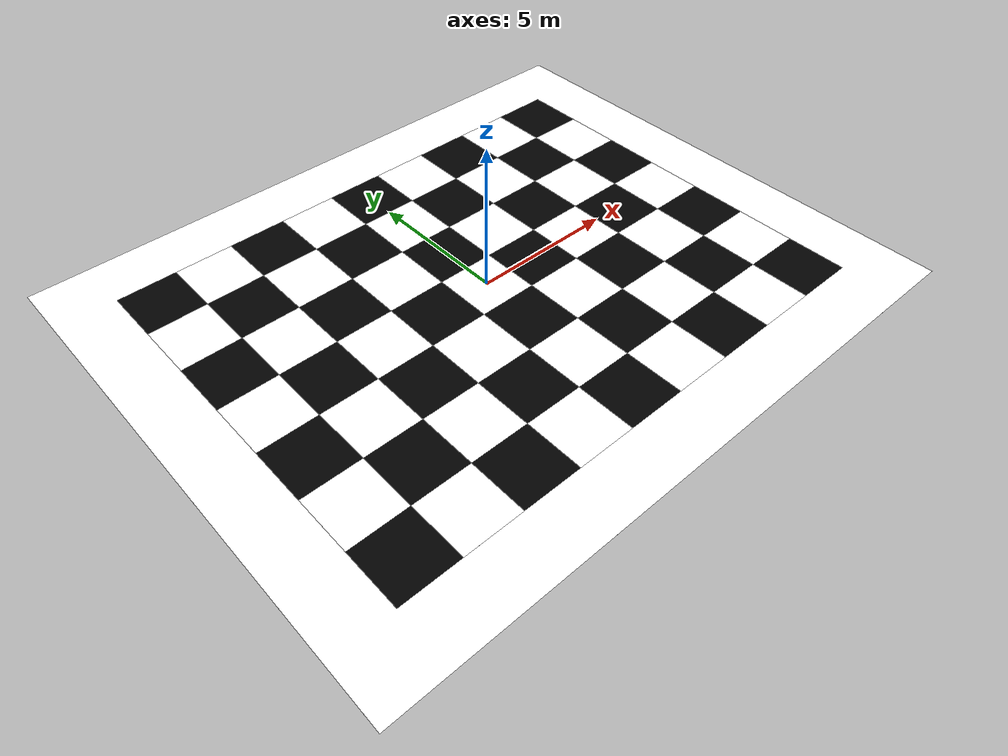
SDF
<?xml version="1.0"?>
<sdf version="1.4">
  <model name="checkerboard_9_7_2_0">
  <static>true</static>
  <link name="checkerboard_9_7_2_0_body">
      <visual name="checker_0_0">
        <pose>-8.0 -6.0 0 0 0 0</pose>
        <geometry>
          <box>
            <size>2.0 2.0 0.0002</size>
          </box>
        </geometry>
        <material>
          <ambient>0 0 0 1</ambient>
          <diffuse>0 0 0 1</diffuse>
          <specular>0 0 0 1</specular>
          <emissive>0 0 0 1</emissive>
        </material>
      </visual>
      <visual name="checker_0_1">
        <pose>-8.0 -4.0 0 0 0 0</pose>
        <geometry>
          <box>
            <size>2.0 2.0 0.0002</size>
          </box>
        </geometry>
        <material>
          <ambient>1 1 1 1</ambient>
          <diffuse>1 1 1 1</diffuse>
          <specular>1 1 1 1</specular>
          <emissive>1 1 1 1</emissive>
        </material>
      </visual>
      <visual name="checker_0_2">
        <pose>-8.0 -2.0 0 0 0 0</pose>
        <geometry>
          <box>
            <size>2.0 2.0 0.0002</size>
          </box>
        </geometry>
        <material>
          <ambient>0 0 0 1</ambient>
          <diffuse>0 0 0 1</diffuse>
          <specular>0 0 0 1</specular>
          <emissive>0 0 0 1</emissive>
        </material>
      </visual>
      <visual name="checker_0_3">
        <pose>-8.0 0.0 0 0 0 0</pose>
        <geometry>
          <box>
            <size>2.0 2.0 0.0002</size>
          </box>
        </geometry>
        <material>
          <ambient>1 1 1 1</ambient>
          <diffuse>1 1 1 1</diffuse>
          <specular>1 1 1 1</specular>
          <emissive>1 1 1 1</emissive>
        </material>
      </visual>
      <visual name="checker_0_4">
        <pose>-8.0 2.0 0 0 0 0</pose>
        <geometry>
          <box>
            <size>2.0 2.0 0.0002</size>
          </box>
        </geometry>
        <material>
          <ambient>0 0 0 1</ambient>
          <diffuse>0 0 0 1</diffuse>
          <specular>0 0 0 1</specular>
          <emissive>0 0 0 1</emissive>
        </material>
      </visual>
      <visual name="checker_0_5">
        <pose>-8.0 4.0 0 0 0 0</pose>
        <geometry>
          <box>
            <size>2.0 2.0 0.0002</size>
          </box>
        </geometry>
        <material>
          <ambient>1 1 1 1</ambient>
          <diffuse>1 1 1 1</diffuse>
          <specular>1 1 1 1</specular>
          <emissive>1 1 1 1</emissive>
        </material>
      </visual>
      <visual name="checker_0_6">
        <pose>-8.0 6.0 0 0 0 0</pose>
        <geometry>
          <box>
            <size>2.0 2.0 0.0002</size>
          </box>
        </geometry>
        <material>
          <ambient>0 0 0 1</ambient>
          <diffuse>0 0 0 1</diffuse>
          <specular>0 0 0 1</specular>
          <emissive>0 0 0 1</emissive>
        </material>
      </visual>
      <visual name="checker_1_0">
        <pose>-6.0 -6.0 0 0 0 0</pose>
        <geometry>
          <box>
            <size>2.0 2.0 0.0002</size>
          </box>
        </geometry>
        <material>
          <ambient>1 1 1 1</ambient>
          <diffuse>1 1 1 1</diffuse>
          <specular>1 1 1 1</specular>
          <emissive>1 1 1 1</emissive>
        </material>
      </visual>
      <visual name="checker_1_1">
        <pose>-6.0 -4.0 0 0 0 0</pose>
        <geometry>
          <box>
            <size>2.0 2.0 0.0002</size>
          </box>
        </geometry>
        <material>
          <ambient>0 0 0 1</ambient>
          <diffuse>0 0 0 1</diffuse>
          <specular>0 0 0 1</specular>
          <emissive>0 0 0 1</emissive>
        </material>
      </visual>
      <visual name="checker_1_2">
        <pose>-6.0 -2.0 0 0 0 0</pose>
        <geometry>
          <box>
            <size>2.0 2.0 0.0002</size>
          </box>
        </geometry>
        <material>
          <ambient>1 1 1 1</ambient>
          <diffuse>1 1 1 1</diffuse>
          <specular>1 1 1 1</specular>
          <emissive>1 1 1 1</emissive>
        </material>
      </visual>
      <visual name="checker_1_3">
        <pose>-6.0 0.0 0 0 0 0</pose>
        <geometry>
          <box>
            <size>2.0 2.0 0.0002</size>
          </box>
        </geometry>
        <material>
          <ambient>0 0 0 1</ambient>
          <diffuse>0 0 0 1</diffuse>
          <specular>0 0 0 1</specular>
          <emissive>0 0 0 1</emissive>
        </material>
      </visual>
      <visual name="checker_1_4">
        <pose>-6.0 2.0 0 0 0 0</pose>
        <geometry>
          <box>
            <size>2.0 2.0 0.0002</size>
          </box>
        </geometry>
        <material>
          <ambient>1 1 1 1</ambient>
          <diffuse>1 1 1 1</diffuse>
          <specular>1 1 1 1</specular>
          <emissive>1 1 1 1</emissive>
        </material>
      </visual>
      <visual name="checker_1_5">
        <pose>-6.0 4.0 0 0 0 0</pose>
        <geometry>
          <box>
            <size>2.0 2.0 0.0002</size>
          </box>
        </geometry>
        <material>
          <ambient>0 0 0 1</ambient>
          <diffuse>0 0 0 1</diffuse>
          <specular>0 0 0 1</specular>
          <emissive>0 0 0 1</emissive>
        </material>
      </visual>
      <visual name="checker_1_6">
        <pose>-6.0 6.0 0 0 0 0</pose>
        <geometry>
          <box>
            <size>2.0 2.0 0.0002</size>
          </box>
        </geometry>
        <material>
          <ambient>1 1 1 1</ambient>
          <diffuse>1 1 1 1</diffuse>
          <specular>1 1 1 1</specular>
          <emissive>1 1 1 1</emissive>
        </material>
      </visual>
      <visual name="checker_2_0">
        <pose>-4.0 -6.0 0 0 0 0</pose>
        <geometry>
          <box>
            <size>2.0 2.0 0.0002</size>
          </box>
        </geometry>
        <material>
          <ambient>0 0 0 1</ambient>
          <diffuse>0 0 0 1</diffuse>
          <specular>0 0 0 1</specular>
          <emissive>0 0 0 1</emissive>
        </material>
      </visual>
      <visual name="checker_2_1">
        <pose>-4.0 -4.0 0 0 0 0</pose>
        <geometry>
          <box>
            <size>2.0 2.0 0.0002</size>
          </box>
        </geometry>
        <material>
          <ambient>1 1 1 1</ambient>
          <diffuse>1 1 1 1</diffuse>
          <specular>1 1 1 1</specular>
          <emissive>1 1 1 1</emissive>
        </material>
      </visual>
      <visual name="checker_2_2">
        <pose>-4.0 -2.0 0 0 0 0</pose>
        <geometry>
          <box>
            <size>2.0 2.0 0.0002</size>
          </box>
        </geometry>
        <material>
          <ambient>0 0 0 1</ambient>
          <diffuse>0 0 0 1</diffuse>
          <specular>0 0 0 1</specular>
          <emissive>0 0 0 1</emissive>
        </material>
      </visual>
      <visual name="checker_2_3">
        <pose>-4.0 0.0 0 0 0 0</pose>
        <geometry>
          <box>
            <size>2.0 2.0 0.0002</size>
          </box>
        </geometry>
        <material>
          <ambient>1 1 1 1</ambient>
          <diffuse>1 1 1 1</diffuse>
          <specular>1 1 1 1</specular>
          <emissive>1 1 1 1</emissive>
        </material>
      </visual>
      <visual name="checker_2_4">
        <pose>-4.0 2.0 0 0 0 0</pose>
        <geometry>
          <box>
            <size>2.0 2.0 0.0002</size>
          </box>
        </geometry>
        <material>
          <ambient>0 0 0 1</ambient>
          <diffuse>0 0 0 1</diffuse>
          <specular>0 0 0 1</specular>
          <emissive>0 0 0 1</emissive>
        </material>
      </visual>
      <visual name="checker_2_5">
        <pose>-4.0 4.0 0 0 0 0</pose>
        <geometry>
          <box>
            <size>2.0 2.0 0.0002</size>
          </box>
        </geometry>
        <material>
          <ambient>1 1 1 1</ambient>
          <diffuse>1 1 1 1</diffuse>
          <specular>1 1 1 1</specular>
          <emissive>1 1 1 1</emissive>
        </material>
      </visual>
      <visual name="checker_2_6">
        <pose>-4.0 6.0 0 0 0 0</pose>
        <geometry>
          <box>
            <size>2.0 2.0 0.0002</size>
          </box>
        </geometry>
        <material>
          <ambient>0 0 0 1</ambient>
          <diffuse>0 0 0 1</diffuse>
          <specular>0 0 0 1</specular>
          <emissive>0 0 0 1</emissive>
        </material>
      </visual>
      <visual name="checker_3_0">
        <pose>-2.0 -6.0 0 0 0 0</pose>
        <geometry>
          <box>
            <size>2.0 2.0 0.0002</size>
          </box>
        </geometry>
        <material>
          <ambient>1 1 1 1</ambient>
          <diffuse>1 1 1 1</diffuse>
          <specular>1 1 1 1</specular>
          <emissive>1 1 1 1</emissive>
        </material>
      </visual>
      <visual name="checker_3_1">
        <pose>-2.0 -4.0 0 0 0 0</pose>
        <geometry>
          <box>
            <size>2.0 2.0 0.0002</size>
          </box>
        </geometry>
        <material>
          <ambient>0 0 0 1</ambient>
          <diffuse>0 0 0 1</diffuse>
          <specular>0 0 0 1</specular>
          <emissive>0 0 0 1</emissive>
        </material>
      </visual>
      <visual name="checker_3_2">
        <pose>-2.0 -2.0 0 0 0 0</pose>
        <geometry>
          <box>
            <size>2.0 2.0 0.0002</size>
          </box>
        </geometry>
        <material>
          <ambient>1 1 1 1</ambient>
          <diffuse>1 1 1 1</diffuse>
          <specular>1 1 1 1</specular>
          <emissive>1 1 1 1</emissive>
        </material>
      </visual>
      <visual name="checker_3_3">
        <pose>-2.0 0.0 0 0 0 0</pose>
        <geometry>
          <box>
            <size>2.0 2.0 0.0002</size>
          </box>
        </geometry>
        <material>
          <ambient>0 0 0 1</ambient>
          <diffuse>0 0 0 1</diffuse>
          <specular>0 0 0 1</specular>
          <emissive>0 0 0 1</emissive>
        </material>
      </visual>
      <visual name="checker_3_4">
        <pose>-2.0 2.0 0 0 0 0</pose>
        <geometry>
          <box>
            <size>2.0 2.0 0.0002</size>
          </box>
        </geometry>
        <material>
          <ambient>1 1 1 1</ambient>
          <diffuse>1 1 1 1</diffuse>
          <specular>1 1 1 1</specular>
          <emissive>1 1 1 1</emissive>
        </material>
      </visual>
      <visual name="checker_3_5">
        <pose>-2.0 4.0 0 0 0 0</pose>
        <geometry>
          <box>
            <size>2.0 2.0 0.0002</size>
          </box>
        </geometry>
        <material>
          <ambient>0 0 0 1</ambient>
          <diffuse>0 0 0 1</diffuse>
          <specular>0 0 0 1</specular>
          <emissive>0 0 0 1</emissive>
        </material>
      </visual>
      <visual name="checker_3_6">
        <pose>-2.0 6.0 0 0 0 0</pose>
        <geometry>
          <box>
            <size>2.0 2.0 0.0002</size>
          </box>
        </geometry>
        <material>
          <ambient>1 1 1 1</ambient>
          <diffuse>1 1 1 1</diffuse>
          <specular>1 1 1 1</specular>
          <emissive>1 1 1 1</emissive>
        </material>
      </visual>
      <visual name="checker_4_0">
        <pose>0.0 -6.0 0 0 0 0</pose>
        <geometry>
          <box>
            <size>2.0 2.0 0.0002</size>
          </box>
        </geometry>
        <material>
          <ambient>0 0 0 1</ambient>
          <diffuse>0 0 0 1</diffuse>
          <specular>0 0 0 1</specular>
          <emissive>0 0 0 1</emissive>
        </material>
      </visual>
      <visual name="checker_4_1">
        <pose>0.0 -4.0 0 0 0 0</pose>
        <geometry>
          <box>
            <size>2.0 2.0 0.0002</size>
          </box>
        </geometry>
        <material>
          <ambient>1 1 1 1</ambient>
          <diffuse>1 1 1 1</diffuse>
          <specular>1 1 1 1</specular>
          <emissive>1 1 1 1</emissive>
        </material>
      </visual>
      <visual name="checker_4_2">
        <pose>0.0 -2.0 0 0 0 0</pose>
        <geometry>
          <box>
            <size>2.0 2.0 0.0002</size>
          </box>
        </geometry>
        <material>
          <ambient>0 0 0 1</ambient>
          <diffuse>0 0 0 1</diffuse>
          <specular>0 0 0 1</specular>
          <emissive>0 0 0 1</emissive>
        </material>
      </visual>
      <visual name="checker_4_3">
        <pose>0.0 0.0 0 0 0 0</pose>
        <geometry>
          <box>
            <size>2.0 2.0 0.0002</size>
          </box>
        </geometry>
        <material>
          <ambient>1 1 1 1</ambient>
          <diffuse>1 1 1 1</diffuse>
          <specular>1 1 1 1</specular>
          <emissive>1 1 1 1</emissive>
        </material>
      </visual>
      <visual name="checker_4_4">
        <pose>0.0 2.0 0 0 0 0</pose>
        <geometry>
          <box>
            <size>2.0 2.0 0.0002</size>
          </box>
        </geometry>
        <material>
          <ambient>0 0 0 1</ambient>
          <diffuse>0 0 0 1</diffuse>
          <specular>0 0 0 1</specular>
          <emissive>0 0 0 1</emissive>
        </material>
      </visual>
      <visual name="checker_4_5">
        <pose>0.0 4.0 0 0 0 0</pose>
        <geometry>
          <box>
            <size>2.0 2.0 0.0002</size>
          </box>
        </geometry>
        <material>
          <ambient>1 1 1 1</ambient>
          <diffuse>1 1 1 1</diffuse>
          <specular>1 1 1 1</specular>
          <emissive>1 1 1 1</emissive>
        </material>
      </visual>
      <visual name="checker_4_6">
        <pose>0.0 6.0 0 0 0 0</pose>
        <geometry>
          <box>
            <size>2.0 2.0 0.0002</size>
          </box>
        </geometry>
        <material>
          <ambient>0 0 0 1</ambient>
          <diffuse>0 0 0 1</diffuse>
          <specular>0 0 0 1</specular>
          <emissive>0 0 0 1</emissive>
        </material>
      </visual>
      <visual name="checker_5_0">
        <pose>2.0 -6.0 0 0 0 0</pose>
        <geometry>
          <box>
            <size>2.0 2.0 0.0002</size>
          </box>
        </geometry>
        <material>
          <ambient>1 1 1 1</ambient>
          <diffuse>1 1 1 1</diffuse>
          <specular>1 1 1 1</specular>
          <emissive>1 1 1 1</emissive>
        </material>
      </visual>
      <visual name="checker_5_1">
        <pose>2.0 -4.0 0 0 0 0</pose>
        <geometry>
          <box>
            <size>2.0 2.0 0.0002</size>
          </box>
        </geometry>
        <material>
          <ambient>0 0 0 1</ambient>
          <diffuse>0 0 0 1</diffuse>
          <specular>0 0 0 1</specular>
          <emissive>0 0 0 1</emissive>
        </material>
      </visual>
      <visual name="checker_5_2">
        <pose>2.0 -2.0 0 0 0 0</pose>
        <geometry>
          <box>
            <size>2.0 2.0 0.0002</size>
          </box>
        </geometry>
        <material>
          <ambient>1 1 1 1</ambient>
          <diffuse>1 1 1 1</diffuse>
          <specular>1 1 1 1</specular>
          <emissive>1 1 1 1</emissive>
        </material>
      </visual>
      <visual name="checker_5_3">
        <pose>2.0 0.0 0 0 0 0</pose>
        <geometry>
          <box>
            <size>2.0 2.0 0.0002</size>
          </box>
        </geometry>
        <material>
          <ambient>0 0 0 1</ambient>
          <diffuse>0 0 0 1</diffuse>
          <specular>0 0 0 1</specular>
          <emissive>0 0 0 1</emissive>
        </material>
      </visual>
      <visual name="checker_5_4">
        <pose>2.0 2.0 0 0 0 0</pose>
        <geometry>
          <box>
            <size>2.0 2.0 0.0002</size>
          </box>
        </geometry>
        <material>
          <ambient>1 1 1 1</ambient>
          <diffuse>1 1 1 1</diffuse>
          <specular>1 1 1 1</specular>
          <emissive>1 1 1 1</emissive>
        </material>
      </visual>
      <visual name="checker_5_5">
        <pose>2.0 4.0 0 0 0 0</pose>
        <geometry>
          <box>
            <size>2.0 2.0 0.0002</size>
          </box>
        </geometry>
        <material>
          <ambient>0 0 0 1</ambient>
          <diffuse>0 0 0 1</diffuse>
          <specular>0 0 0 1</specular>
          <emissive>0 0 0 1</emissive>
        </material>
      </visual>
      <visual name="checker_5_6">
        <pose>2.0 6.0 0 0 0 0</pose>
        <geometry>
          <box>
            <size>2.0 2.0 0.0002</size>
          </box>
        </geometry>
        <material>
          <ambient>1 1 1 1</ambient>
          <diffuse>1 1 1 1</diffuse>
          <specular>1 1 1 1</specular>
          <emissive>1 1 1 1</emissive>
        </material>
      </visual>
      <visual name="checker_6_0">
        <pose>4.0 -6.0 0 0 0 0</pose>
        <geometry>
          <box>
            <size>2.0 2.0 0.0002</size>
          </box>
        </geometry>
        <material>
          <ambient>0 0 0 1</ambient>
          <diffuse>0 0 0 1</diffuse>
          <specular>0 0 0 1</specular>
          <emissive>0 0 0 1</emissive>
        </material>
      </visual>
      <visual name="checker_6_1">
        <pose>4.0 -4.0 0 0 0 0</pose>
        <geometry>
          <box>
            <size>2.0 2.0 0.0002</size>
          </box>
        </geometry>
        <material>
          <ambient>1 1 1 1</ambient>
          <diffuse>1 1 1 1</diffuse>
          <specular>1 1 1 1</specular>
          <emissive>1 1 1 1</emissive>
        </material>
      </visual>
      <visual name="checker_6_2">
        <pose>4.0 -2.0 0 0 0 0</pose>
        <geometry>
          <box>
            <size>2.0 2.0 0.0002</size>
          </box>
        </geometry>
        <material>
          <ambient>0 0 0 1</ambient>
          <diffuse>0 0 0 1</diffuse>
          <specular>0 0 0 1</specular>
          <emissive>0 0 0 1</emissive>
        </material>
      </visual>
      <visual name="checker_6_3">
        <pose>4.0 0.0 0 0 0 0</pose>
        <geometry>
          <box>
            <size>2.0 2.0 0.0002</size>
          </box>
        </geometry>
        <material>
          <ambient>1 1 1 1</ambient>
          <diffuse>1 1 1 1</diffuse>
          <specular>1 1 1 1</specular>
          <emissive>1 1 1 1</emissive>
        </material>
      </visual>
      <visual name="checker_6_4">
        <pose>4.0 2.0 0 0 0 0</pose>
        <geometry>
          <box>
            <size>2.0 2.0 0.0002</size>
          </box>
        </geometry>
        <material>
          <ambient>0 0 0 1</ambient>
          <diffuse>0 0 0 1</diffuse>
          <specular>0 0 0 1</specular>
          <emissive>0 0 0 1</emissive>
        </material>
      </visual>
      <visual name="checker_6_5">
        <pose>4.0 4.0 0 0 0 0</pose>
        <geometry>
          <box>
            <size>2.0 2.0 0.0002</size>
          </box>
        </geometry>
        <material>
          <ambient>1 1 1 1</ambient>
          <diffuse>1 1 1 1</diffuse>
          <specular>1 1 1 1</specular>
          <emissive>1 1 1 1</emissive>
        </material>
      </visual>
      <visual name="checker_6_6">
        <pose>4.0 6.0 0 0 0 0</pose>
        <geometry>
          <box>
            <size>2.0 2.0 0.0002</size>
          </box>
        </geometry>
        <material>
          <ambient>0 0 0 1</ambient>
          <diffuse>0 0 0 1</diffuse>
          <specular>0 0 0 1</specular>
          <emissive>0 0 0 1</emissive>
        </material>
      </visual>
      <visual name="checker_7_0">
        <pose>6.0 -6.0 0 0 0 0</pose>
        <geometry>
          <box>
            <size>2.0 2.0 0.0002</size>
          </box>
        </geometry>
        <material>
          <ambient>1 1 1 1</ambient>
          <diffuse>1 1 1 1</diffuse>
          <specular>1 1 1 1</specular>
          <emissive>1 1 1 1</emissive>
        </material>
      </visual>
      <visual name="checker_7_1">
        <pose>6.0 -4.0 0 0 0 0</pose>
        <geometry>
          <box>
            <size>2.0 2.0 0.0002</size>
          </box>
        </geometry>
        <material>
          <ambient>0 0 0 1</ambient>
          <diffuse>0 0 0 1</diffuse>
          <specular>0 0 0 1</specular>
          <emissive>0 0 0 1</emissive>
        </material>
      </visual>
      <visual name="checker_7_2">
        <pose>6.0 -2.0 0 0 0 0</pose>
        <geometry>
          <box>
            <size>2.0 2.0 0.0002</size>
          </box>
        </geometry>
        <material>
          <ambient>1 1 1 1</ambient>
          <diffuse>1 1 1 1</diffuse>
          <specular>1 1 1 1</specular>
          <emissive>1 1 1 1</emissive>
        </material>
      </visual>
      <visual name="checker_7_3">
        <pose>6.0 0.0 0 0 0 0</pose>
        <geometry>
          <box>
            <size>2.0 2.0 0.0002</size>
          </box>
        </geometry>
        <material>
          <ambient>0 0 0 1</ambient>
          <diffuse>0 0 0 1</diffuse>
          <specular>0 0 0 1</specular>
          <emissive>0 0 0 1</emissive>
        </material>
      </visual>
      <visual name="checker_7_4">
        <pose>6.0 2.0 0 0 0 0</pose>
        <geometry>
          <box>
            <size>2.0 2.0 0.0002</size>
          </box>
        </geometry>
        <material>
          <ambient>1 1 1 1</ambient>
          <diffuse>1 1 1 1</diffuse>
          <specular>1 1 1 1</specular>
          <emissive>1 1 1 1</emissive>
        </material>
      </visual>
      <visual name="checker_7_5">
        <pose>6.0 4.0 0 0 0 0</pose>
        <geometry>
          <box>
            <size>2.0 2.0 0.0002</size>
          </box>
        </geometry>
        <material>
          <ambient>0 0 0 1</ambient>
          <diffuse>0 0 0 1</diffuse>
          <specular>0 0 0 1</specular>
          <emissive>0 0 0 1</emissive>
        </material>
      </visual>
      <visual name="checker_7_6">
        <pose>6.0 6.0 0 0 0 0</pose>
        <geometry>
          <box>
            <size>2.0 2.0 0.0002</size>
          </box>
        </geometry>
        <material>
          <ambient>1 1 1 1</ambient>
          <diffuse>1 1 1 1</diffuse>
          <specular>1 1 1 1</specular>
          <emissive>1 1 1 1</emissive>
        </material>
      </visual>
      <visual name="checker_8_0">
        <pose>8.0 -6.0 0 0 0 0</pose>
        <geometry>
          <box>
            <size>2.0 2.0 0.0002</size>
          </box>
        </geometry>
        <material>
          <ambient>0 0 0 1</ambient>
          <diffuse>0 0 0 1</diffuse>
          <specular>0 0 0 1</specular>
          <emissive>0 0 0 1</emissive>
        </material>
      </visual>
      <visual name="checker_8_1">
        <pose>8.0 -4.0 0 0 0 0</pose>
        <geometry>
          <box>
            <size>2.0 2.0 0.0002</size>
          </box>
        </geometry>
        <material>
          <ambient>1 1 1 1</ambient>
          <diffuse>1 1 1 1</diffuse>
          <specular>1 1 1 1</specular>
          <emissive>1 1 1 1</emissive>
        </material>
      </visual>
      <visual name="checker_8_2">
        <pose>8.0 -2.0 0 0 0 0</pose>
        <geometry>
          <box>
            <size>2.0 2.0 0.0002</size>
          </box>
        </geometry>
        <material>
          <ambient>0 0 0 1</ambient>
          <diffuse>0 0 0 1</diffuse>
          <specular>0 0 0 1</specular>
          <emissive>0 0 0 1</emissive>
        </material>
      </visual>
      <visual name="checker_8_3">
        <pose>8.0 0.0 0 0 0 0</pose>
        <geometry>
          <box>
            <size>2.0 2.0 0.0002</size>
          </box>
        </geometry>
        <material>
          <ambient>1 1 1 1</ambient>
          <diffuse>1 1 1 1</diffuse>
          <specular>1 1 1 1</specular>
          <emissive>1 1 1 1</emissive>
        </material>
      </visual>
      <visual name="checker_8_4">
        <pose>8.0 2.0 0 0 0 0</pose>
        <geometry>
          <box>
            <size>2.0 2.0 0.0002</size>
          </box>
        </geometry>
        <material>
          <ambient>0 0 0 1</ambient>
          <diffuse>0 0 0 1</diffuse>
          <specular>0 0 0 1</specular>
          <emissive>0 0 0 1</emissive>
        </material>
      </visual>
      <visual name="checker_8_5">
        <pose>8.0 4.0 0 0 0 0</pose>
        <geometry>
          <box>
            <size>2.0 2.0 0.0002</size>
          </box>
        </geometry>
        <material>
          <ambient>1 1 1 1</ambient>
          <diffuse>1 1 1 1</diffuse>
          <specular>1 1 1 1</specular>
          <emissive>1 1 1 1</emissive>
        </material>
      </visual>
      <visual name="checker_8_6">
        <pose>8.0 6.0 0 0 0 0</pose>
        <geometry>
          <box>
            <size>2.0 2.0 0.0002</size>
          </box>
        </geometry>
        <material>
          <ambient>0 0 0 1</ambient>
          <diffuse>0 0 0 1</diffuse>
          <specular>0 0 0 1</specular>
          <emissive>0 0 0 1</emissive>
        </material>
      </visual>
      <visual name="checker_backdrop">
        <pose>0 0 -0.01 0 0 0</pose>
        <geometry>
          <box>
            <size>22.0 18.0 0.0001</size>
          </box>
        </geometry>
        <material>
          <ambient>1 1 1 1</ambient>
          <diffuse>1 1 1 1</diffuse>
          <specular>1 1 1 1</specular>
          <emissive>1 1 1 1</emissive>
        </material>
      </visual>
      <collision name='collision_bar'>
        <pose>0 0 -0.01 0 0 0</pose>
        <geometry>
          <box>
            <size>22.0 18.0 0.0001</size>
          </box>
        </geometry>
        <surface>
          <friction>
            <ode>
              <mu>1</mu>
              <mu2>1</mu2>
            </ode>
          </friction>
          <contact>
            <ode>
              <kp>1e+8</kp>
              <kd>1</kd>
              <max_vel>0.01</max_vel>
              <min_depth>0.001</min_depth>
            </ode>
          </contact>
        </surface>
      </collision>
    </link>
  </model>
</sdf>
